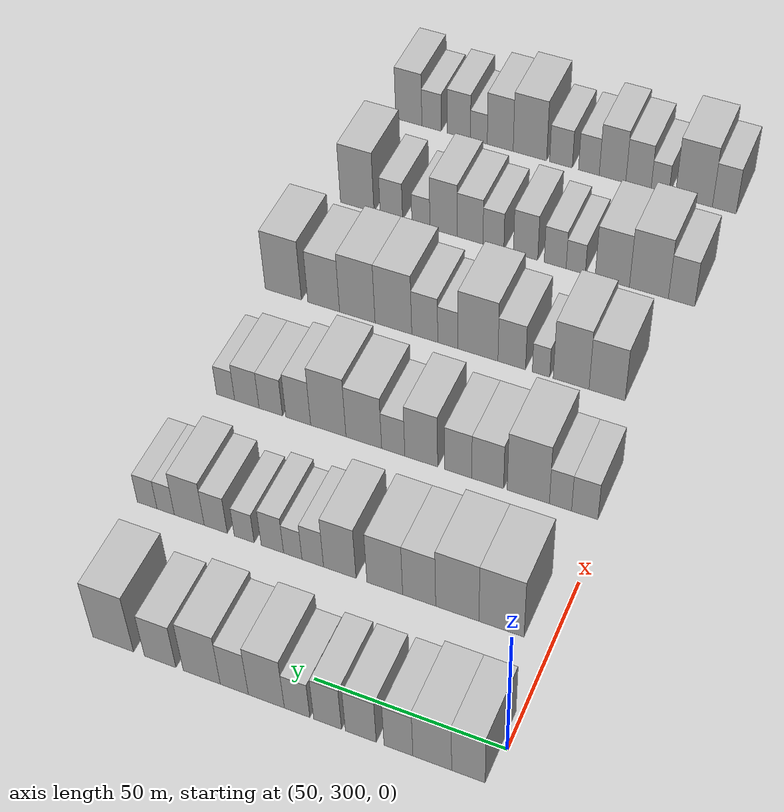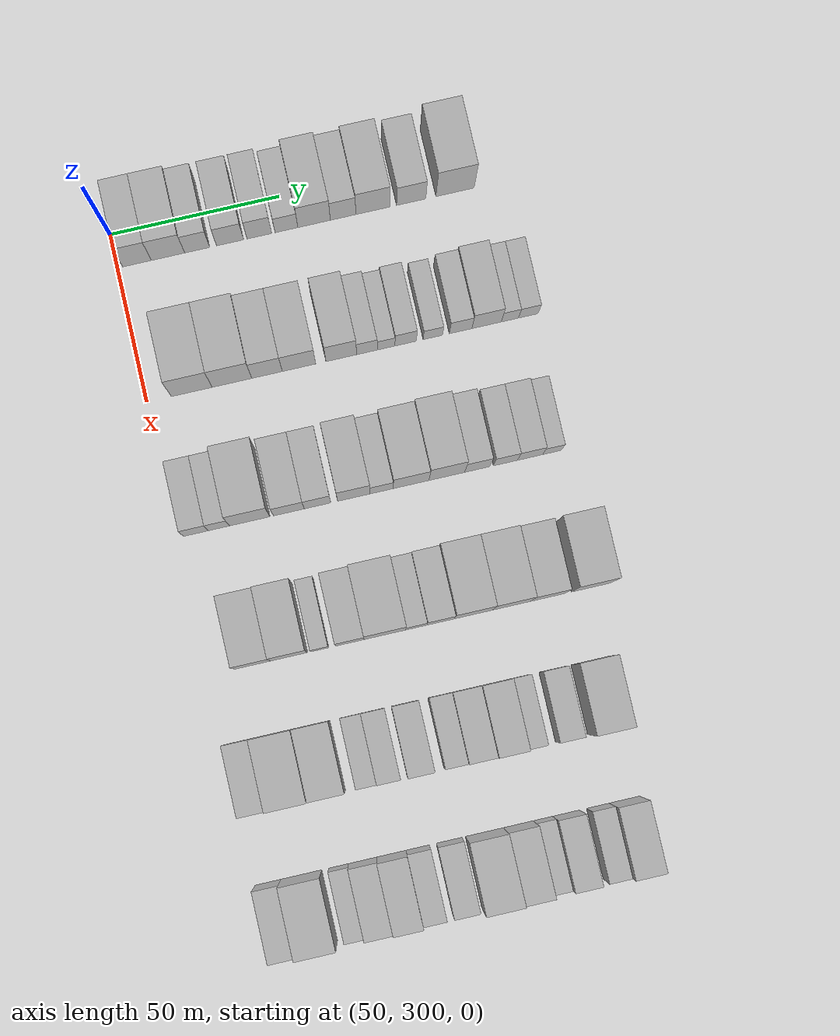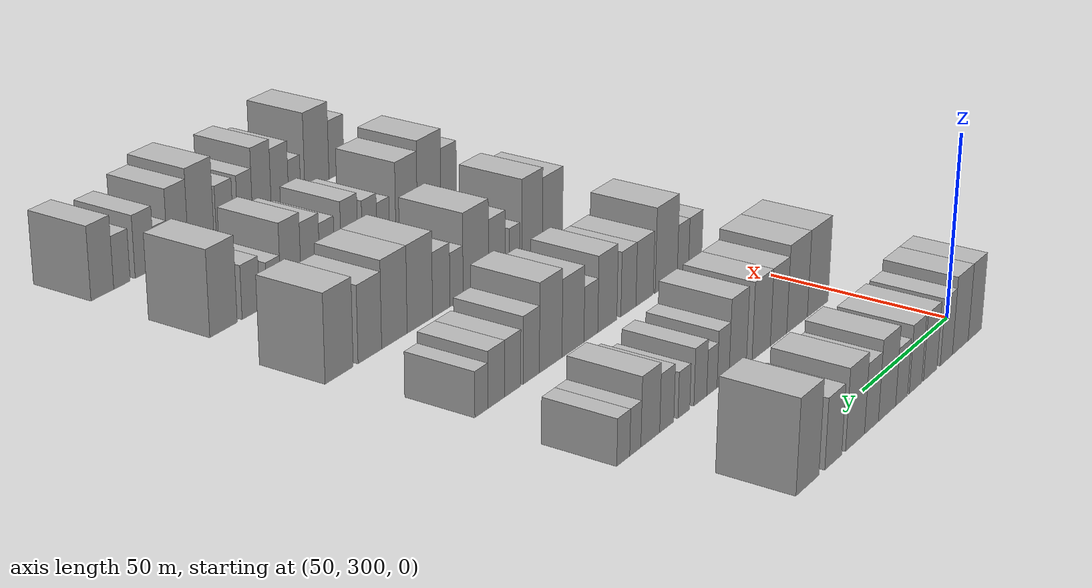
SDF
<sdf version="1.6">
 <world name="default">
  <model name="building_103">
   <static>1</static>
   <pose>50.0000 305.8253 0 0.000000 0.000000 0.000000</pose>
   <link name="link">
    <pose>0 0 10.50 0 0 0</pose>
    <collision name="collision"><geometry><box><size>20.0000 8.4326 21.0000</size></box></geometry></collision>
    <visual name="visual">
     <cast_shadows>0</cast_shadows>
     <geometry><box><size>20.0000 8.4326 21.0000</size></box></geometry>
     <material>
      <script>
       <uri>model://HANNAS_wall/materials/scripts</uri>
       <uri>model://HANNAS_wall/materials/textures</uri>
       <name>vrc/HANNAS_wall</name>
      </script>
     </material>
    </visual>
   </link>
  </model>
  <model name="building_104">
   <static>1</static>
   <pose>50.0000 314.9477 0 0.000000 0.000000 0.000000</pose>
   <link name="link">
    <pose>0 0 10.50 0 0 0</pose>
    <collision name="collision"><geometry><box><size>20.0000 9.8123 21.0000</size></box></geometry></collision>
    <visual name="visual">
     <cast_shadows>0</cast_shadows>
     <geometry><box><size>20.0000 9.8123 21.0000</size></box></geometry>
     <material>
      <script>
       <uri>model://HANNAS_wall/materials/scripts</uri>
       <uri>model://HANNAS_wall/materials/textures</uri>
       <name>vrc/HANNAS_wall</name>
      </script>
     </material>
    </visual>
   </link>
  </model>
  <model name="building_105">
   <static>1</static>
   <pose>50.0000 323.5456 0 0.000000 0.000000 0.000000</pose>
   <link name="link">
    <pose>0 0 9.00 0 0 0</pose>
    <collision name="collision"><geometry><box><size>20.0000 7.3835 18.0000</size></box></geometry></collision>
    <visual name="visual">
     <cast_shadows>0</cast_shadows>
     <geometry><box><size>20.0000 7.3835 18.0000</size></box></geometry>
     <material>
      <script>
       <uri>model://HANNAS_wall/materials/scripts</uri>
       <uri>model://HANNAS_wall/materials/textures</uri>
       <name>vrc/HANNAS_wall</name>
      </script>
     </material>
    </visual>
   </link>
  </model>
  <model name="building_106">
   <static>1</static>
   <pose>50.0000 333.2381 0 0.000000 0.000000 0.000000</pose>
   <link name="link">
    <pose>0 0 9.00 0 0 0</pose>
    <collision name="collision"><geometry><box><size>20.0000 8.0015 18.0000</size></box></geometry></collision>
    <visual name="visual">
     <cast_shadows>0</cast_shadows>
     <geometry><box><size>20.0000 8.0015 18.0000</size></box></geometry>
     <material>
      <script>
       <uri>model://HANNAS_wall/materials/scripts</uri>
       <uri>model://HANNAS_wall/materials/textures</uri>
       <name>vrc/HANNAS_wall</name>
      </script>
     </material>
    </visual>
   </link>
  </model>
  <model name="building_107">
   <static>1</static>
   <pose>50.0000 341.8808 0 0.000000 0.000000 0.000000</pose>
   <link name="link">
    <pose>0 0 9.00 0 0 0</pose>
    <collision name="collision"><geometry><box><size>20.0000 7.2839 18.0000</size></box></geometry></collision>
    <visual name="visual">
     <cast_shadows>0</cast_shadows>
     <geometry><box><size>20.0000 7.2839 18.0000</size></box></geometry>
     <material>
      <script>
       <uri>model://HANNAS_wall/materials/scripts</uri>
       <uri>model://HANNAS_wall/materials/textures</uri>
       <name>vrc/HANNAS_wall</name>
      </script>
     </material>
    </visual>
   </link>
  </model>
  <model name="building_108">
   <static>1</static>
   <pose>50.0000 349.8903 0 0.000000 0.000000 0.000000</pose>
   <link name="link">
    <pose>0 0 7.50 0 0 0</pose>
    <collision name="collision"><geometry><box><size>20.0000 6.7350 15.0000</size></box></geometry></collision>
    <visual name="visual">
     <cast_shadows>0</cast_shadows>
     <geometry><box><size>20.0000 6.7350 15.0000</size></box></geometry>
     <material>
      <script>
       <uri>model://HANNAS_wall/materials/scripts</uri>
       <uri>model://HANNAS_wall/materials/textures</uri>
       <name>vrc/HANNAS_wall</name>
      </script>
     </material>
    </visual>
   </link>
  </model>
  <model name="building_109">
   <static>1</static>
   <pose>50.0000 358.0537 0 0.000000 0.000000 0.000000</pose>
   <link name="link">
    <pose>0 0 10.50 0 0 0</pose>
    <collision name="collision"><geometry><box><size>20.0000 9.5920 21.0000</size></box></geometry></collision>
    <visual name="visual">
     <cast_shadows>0</cast_shadows>
     <geometry><box><size>20.0000 9.5920 21.0000</size></box></geometry>
     <material>
      <script>
       <uri>model://HANNAS_wall/materials/scripts</uri>
       <uri>model://HANNAS_wall/materials/textures</uri>
       <name>vrc/HANNAS_wall</name>
      </script>
     </material>
    </visual>
   </link>
  </model>
  <model name="building_110">
   <static>1</static>
   <pose>50.0000 366.6254 0 0.000000 0.000000 0.000000</pose>
   <link name="link">
    <pose>0 0 9.00 0 0 0</pose>
    <collision name="collision"><geometry><box><size>20.0000 7.5514 18.0000</size></box></geometry></collision>
    <visual name="visual">
     <cast_shadows>0</cast_shadows>
     <geometry><box><size>20.0000 7.5514 18.0000</size></box></geometry>
     <material>
      <script>
       <uri>model://HANNAS_wall/materials/scripts</uri>
       <uri>model://HANNAS_wall/materials/textures</uri>
       <name>vrc/HANNAS_wall</name>
      </script>
     </material>
    </visual>
   </link>
  </model>
  <model name="building_111">
   <static>1</static>
   <pose>50.0000 375.4307 0 0.000000 0.000000 0.000000</pose>
   <link name="link">
    <pose>0 0 10.50 0 0 0</pose>
    <collision name="collision"><geometry><box><size>20.0000 10.0591 21.0000</size></box></geometry></collision>
    <visual name="visual">
     <cast_shadows>0</cast_shadows>
     <geometry><box><size>20.0000 10.0591 21.0000</size></box></geometry>
     <material>
      <script>
       <uri>model://HANNAS_wall/materials/scripts</uri>
       <uri>model://HANNAS_wall/materials/textures</uri>
       <name>vrc/HANNAS_wall</name>
      </script>
     </material>
    </visual>
   </link>
  </model>
  <model name="building_112">
   <static>1</static>
   <pose>50.0000 386.7936 0 0.000000 0.000000 0.000000</pose>
   <link name="link">
    <pose>0 0 9.00 0 0 0</pose>
    <collision name="collision"><geometry><box><size>20.0000 8.6667 18.0000</size></box></geometry></collision>
    <visual name="visual">
     <cast_shadows>0</cast_shadows>
     <geometry><box><size>20.0000 8.6667 18.0000</size></box></geometry>
     <material>
      <script>
       <uri>model://HANNAS_wall/materials/scripts</uri>
       <uri>model://HANNAS_wall/materials/textures</uri>
       <name>vrc/HANNAS_wall</name>
      </script>
     </material>
    </visual>
   </link>
  </model>
  <model name="building_113">
   <static>1</static>
   <pose>50.0000 399.7933 0 0.000000 0.000000 0.000000</pose>
   <link name="link">
    <pose>0 0 12.00 0 0 0</pose>
    <collision name="collision"><geometry><box><size>20.0000 11.3327 24.0000</size></box></geometry></collision>
    <visual name="visual">
     <cast_shadows>0</cast_shadows>
     <geometry><box><size>20.0000 11.3327 24.0000</size></box></geometry>
     <material>
      <script>
       <uri>model://HANNAS_wall/materials/scripts</uri>
       <uri>model://HANNAS_wall/materials/textures</uri>
       <name>vrc/HANNAS_wall</name>
      </script>
     </material>
    </visual>
   </link>
  </model>
  <model name="building_226">
   <static>1</static>
   <pose>90.0000 313.1692 0 0.000000 0.000000 0.000000</pose>
   <link name="link">
    <pose>0 0 12.00 0 0 0</pose>
    <collision name="collision"><geometry><box><size>20.0000 11.9504 24.0000</size></box></geometry></collision>
    <visual name="visual">
     <cast_shadows>0</cast_shadows>
     <geometry><box><size>20.0000 11.9504 24.0000</size></box></geometry>
     <material>
      <script>
       <uri>model://HANNAS_wall/materials/scripts</uri>
       <uri>model://HANNAS_wall/materials/textures</uri>
       <name>vrc/HANNAS_wall</name>
      </script>
     </material>
    </visual>
   </link>
  </model>
  <model name="building_227">
   <static>1</static>
   <pose>90.0000 324.9490 0 0.000000 0.000000 0.000000</pose>
   <link name="link">
    <pose>0 0 12.00 0 0 0</pose>
    <collision name="collision"><geometry><box><size>20.0000 11.6093 24.0000</size></box></geometry></collision>
    <visual name="visual">
     <cast_shadows>0</cast_shadows>
     <geometry><box><size>20.0000 11.6093 24.0000</size></box></geometry>
     <material>
      <script>
       <uri>model://HANNAS_wall/materials/scripts</uri>
       <uri>model://HANNAS_wall/materials/textures</uri>
       <name>vrc/HANNAS_wall</name>
      </script>
     </material>
    </visual>
   </link>
  </model>
  <model name="building_228">
   <static>1</static>
   <pose>90.0000 335.2358 0 0.000000 0.000000 0.000000</pose>
   <link name="link">
    <pose>0 0 10.50 0 0 0</pose>
    <collision name="collision"><geometry><box><size>20.0000 8.9642 21.0000</size></box></geometry></collision>
    <visual name="visual">
     <cast_shadows>0</cast_shadows>
     <geometry><box><size>20.0000 8.9642 21.0000</size></box></geometry>
     <material>
      <script>
       <uri>model://HANNAS_wall/materials/scripts</uri>
       <uri>model://HANNAS_wall/materials/textures</uri>
       <name>vrc/HANNAS_wall</name>
      </script>
     </material>
    </visual>
   </link>
  </model>
  <model name="building_229">
   <static>1</static>
   <pose>90.0000 344.6121 0 0.000000 0.000000 0.000000</pose>
   <link name="link">
    <pose>0 0 10.50 0 0 0</pose>
    <collision name="collision"><geometry><box><size>20.0000 9.7885 21.0000</size></box></geometry></collision>
    <visual name="visual">
     <cast_shadows>0</cast_shadows>
     <geometry><box><size>20.0000 9.7885 21.0000</size></box></geometry>
     <material>
      <script>
       <uri>model://HANNAS_wall/materials/scripts</uri>
       <uri>model://HANNAS_wall/materials/textures</uri>
       <name>vrc/HANNAS_wall</name>
      </script>
     </material>
    </visual>
   </link>
  </model>
  <model name="building_230">
   <static>1</static>
   <pose>90.0000 357.0167 0 0.000000 0.000000 0.000000</pose>
   <link name="link">
    <pose>0 0 10.50 0 0 0</pose>
    <collision name="collision"><geometry><box><size>20.0000 9.0206 21.0000</size></box></geometry></collision>
    <visual name="visual">
     <cast_shadows>0</cast_shadows>
     <geometry><box><size>20.0000 9.0206 21.0000</size></box></geometry>
     <material>
      <script>
       <uri>model://HANNAS_wall/materials/scripts</uri>
       <uri>model://HANNAS_wall/materials/textures</uri>
       <name>vrc/HANNAS_wall</name>
      </script>
     </material>
    </visual>
   </link>
  </model>
  <model name="building_231">
   <static>1</static>
   <pose>90.0000 364.5500 0 0.000000 0.000000 0.000000</pose>
   <link name="link">
    <pose>0 0 7.50 0 0 0</pose>
    <collision name="collision"><geometry><box><size>20.0000 6.0461 15.0000</size></box></geometry></collision>
    <visual name="visual">
     <cast_shadows>0</cast_shadows>
     <geometry><box><size>20.0000 6.0461 15.0000</size></box></geometry>
     <material>
      <script>
       <uri>model://HANNAS_wall/materials/scripts</uri>
       <uri>model://HANNAS_wall/materials/textures</uri>
       <name>vrc/HANNAS_wall</name>
      </script>
     </material>
    </visual>
   </link>
  </model>
  <model name="building_232">
   <static>1</static>
   <pose>90.0000 370.1672 0 0.000000 0.000000 0.000000</pose>
   <link name="link">
    <pose>0 0 6.00 0 0 0</pose>
    <collision name="collision"><geometry><box><size>20.0000 5.1883 12.0000</size></box></geometry></collision>
    <visual name="visual">
     <cast_shadows>0</cast_shadows>
     <geometry><box><size>20.0000 5.1883 12.0000</size></box></geometry>
     <material>
      <script>
       <uri>model://HANNAS_wall/materials/scripts</uri>
       <uri>model://HANNAS_wall/materials/textures</uri>
       <name>vrc/HANNAS_wall</name>
      </script>
     </material>
    </visual>
   </link>
  </model>
  <model name="building_233">
   <static>1</static>
   <pose>90.0000 375.9219 0 0.000000 0.000000 0.000000</pose>
   <link name="link">
    <pose>0 0 7.50 0 0 0</pose>
    <collision name="collision"><geometry><box><size>20.0000 6.3212 15.0000</size></box></geometry></collision>
    <visual name="visual">
     <cast_shadows>0</cast_shadows>
     <geometry><box><size>20.0000 6.3212 15.0000</size></box></geometry>
     <material>
      <script>
       <uri>model://HANNAS_wall/materials/scripts</uri>
       <uri>model://HANNAS_wall/materials/textures</uri>
       <name>vrc/HANNAS_wall</name>
      </script>
     </material>
    </visual>
   </link>
  </model>
  <model name="building_234">
   <static>1</static>
   <pose>90.0000 383.9316 0 0.000000 0.000000 0.000000</pose>
   <link name="link">
    <pose>0 0 6.00 0 0 0</pose>
    <collision name="collision"><geometry><box><size>20.0000 5.6982 12.0000</size></box></geometry></collision>
    <visual name="visual">
     <cast_shadows>0</cast_shadows>
     <geometry><box><size>20.0000 5.6982 12.0000</size></box></geometry>
     <material>
      <script>
       <uri>model://HANNAS_wall/materials/scripts</uri>
       <uri>model://HANNAS_wall/materials/textures</uri>
       <name>vrc/HANNAS_wall</name>
      </script>
     </material>
    </visual>
   </link>
  </model>
  <model name="building_235">
   <static>1</static>
   <pose>90.0000 392.1097 0 0.000000 0.000000 0.000000</pose>
   <link name="link">
    <pose>0 0 7.50 0 0 0</pose>
    <collision name="collision"><geometry><box><size>20.0000 6.6580 15.0000</size></box></geometry></collision>
    <visual name="visual">
     <cast_shadows>0</cast_shadows>
     <geometry><box><size>20.0000 6.6580 15.0000</size></box></geometry>
     <material>
      <script>
       <uri>model://HANNAS_wall/materials/scripts</uri>
       <uri>model://HANNAS_wall/materials/textures</uri>
       <name>vrc/HANNAS_wall</name>
      </script>
     </material>
    </visual>
   </link>
  </model>
  <model name="building_236">
   <static>1</static>
   <pose>90.0000 399.7861 0 0.000000 0.000000 0.000000</pose>
   <link name="link">
    <pose>0 0 9.00 0 0 0</pose>
    <collision name="collision"><geometry><box><size>20.0000 8.6948 18.0000</size></box></geometry></collision>
    <visual name="visual">
     <cast_shadows>0</cast_shadows>
     <geometry><box><size>20.0000 8.6948 18.0000</size></box></geometry>
     <material>
      <script>
       <uri>model://HANNAS_wall/materials/scripts</uri>
       <uri>model://HANNAS_wall/materials/textures</uri>
       <name>vrc/HANNAS_wall</name>
      </script>
     </material>
    </visual>
   </link>
  </model>
  <model name="building_237">
   <static>1</static>
   <pose>90.0000 406.6578 0 0.000000 0.000000 0.000000</pose>
   <link name="link">
    <pose>0 0 6.00 0 0 0</pose>
    <collision name="collision"><geometry><box><size>20.0000 5.0487 12.0000</size></box></geometry></collision>
    <visual name="visual">
     <cast_shadows>0</cast_shadows>
     <geometry><box><size>20.0000 5.0487 12.0000</size></box></geometry>
     <material>
      <script>
       <uri>model://HANNAS_wall/materials/scripts</uri>
       <uri>model://HANNAS_wall/materials/textures</uri>
       <name>vrc/HANNAS_wall</name>
      </script>
     </material>
    </visual>
   </link>
  </model>
  <model name="building_238">
   <static>1</static>
   <pose>90.0000 412.0759 0 0.000000 0.000000 0.000000</pose>
   <link name="link">
    <pose>0 0 6.00 0 0 0</pose>
    <collision name="collision"><geometry><box><size>20.0000 5.7875 12.0000</size></box></geometry></collision>
    <visual name="visual">
     <cast_shadows>0</cast_shadows>
     <geometry><box><size>20.0000 5.7875 12.0000</size></box></geometry>
     <material>
      <script>
       <uri>model://HANNAS_wall/materials/scripts</uri>
       <uri>model://HANNAS_wall/materials/textures</uri>
       <name>vrc/HANNAS_wall</name>
      </script>
     </material>
    </visual>
   </link>
  </model>
  <model name="building_365">
   <static>1</static>
   <pose>130.0000 305.6212 0 0.000000 0.000000 0.000000</pose>
   <link name="link">
    <pose>0 0 7.50 0 0 0</pose>
    <collision name="collision"><geometry><box><size>20.0000 7.2602 15.0000</size></box></geometry></collision>
    <visual name="visual">
     <cast_shadows>0</cast_shadows>
     <geometry><box><size>20.0000 7.2602 15.0000</size></box></geometry>
     <material>
      <script>
       <uri>model://HANNAS_wall/materials/scripts</uri>
       <uri>model://HANNAS_wall/materials/textures</uri>
       <name>vrc/HANNAS_wall</name>
      </script>
     </material>
    </visual>
   </link>
  </model>
  <model name="building_366">
   <static>1</static>
   <pose>130.0000 312.3265 0 0.000000 0.000000 0.000000</pose>
   <link name="link">
    <pose>0 0 7.50 0 0 0</pose>
    <collision name="collision"><geometry><box><size>20.0000 6.1504 15.0000</size></box></geometry></collision>
    <visual name="visual">
     <cast_shadows>0</cast_shadows>
     <geometry><box><size>20.0000 6.1504 15.0000</size></box></geometry>
     <material>
      <script>
       <uri>model://HANNAS_wall/materials/scripts</uri>
       <uri>model://HANNAS_wall/materials/textures</uri>
       <name>vrc/HANNAS_wall</name>
      </script>
     </material>
    </visual>
   </link>
  </model>
  <model name="building_367">
   <static>1</static>
   <pose>130.0000 321.2899 0 0.000000 0.000000 0.000000</pose>
   <link name="link">
    <pose>0 0 12.00 0 0 0</pose>
    <collision name="collision"><geometry><box><size>20.0000 11.7765 24.0000</size></box></geometry></collision>
    <visual name="visual">
     <cast_shadows>0</cast_shadows>
     <geometry><box><size>20.0000 11.7765 24.0000</size></box></geometry>
     <material>
      <script>
       <uri>model://HANNAS_wall/materials/scripts</uri>
       <uri>model://HANNAS_wall/materials/textures</uri>
       <name>vrc/HANNAS_wall</name>
      </script>
     </material>
    </visual>
   </link>
  </model>
  <model name="building_368">
   <static>1</static>
   <pose>130.0000 332.6677 0 0.000000 0.000000 0.000000</pose>
   <link name="link">
    <pose>0 0 9.00 0 0 0</pose>
    <collision name="collision"><geometry><box><size>20.0000 8.9789 18.0000</size></box></geometry></collision>
    <visual name="visual">
     <cast_shadows>0</cast_shadows>
     <geometry><box><size>20.0000 8.9789 18.0000</size></box></geometry>
     <material>
      <script>
       <uri>model://HANNAS_wall/materials/scripts</uri>
       <uri>model://HANNAS_wall/materials/textures</uri>
       <name>vrc/HANNAS_wall</name>
      </script>
     </material>
    </visual>
   </link>
  </model>
  <model name="building_369">
   <static>1</static>
   <pose>130.0000 341.0143 0 0.000000 0.000000 0.000000</pose>
   <link name="link">
    <pose>0 0 9.00 0 0 0</pose>
    <collision name="collision"><geometry><box><size>20.0000 7.7143 18.0000</size></box></geometry></collision>
    <visual name="visual">
     <cast_shadows>0</cast_shadows>
     <geometry><box><size>20.0000 7.7143 18.0000</size></box></geometry>
     <material>
      <script>
       <uri>model://HANNAS_wall/materials/scripts</uri>
       <uri>model://HANNAS_wall/materials/textures</uri>
       <name>vrc/HANNAS_wall</name>
      </script>
     </material>
    </visual>
   </link>
  </model>
  <model name="building_370">
   <static>1</static>
   <pose>130.0000 351.5973 0 0.000000 0.000000 0.000000</pose>
   <link name="link">
    <pose>0 0 10.50 0 0 0</pose>
    <collision name="collision"><geometry><box><size>20.0000 9.4517 21.0000</size></box></geometry></collision>
    <visual name="visual">
     <cast_shadows>0</cast_shadows>
     <geometry><box><size>20.0000 9.4517 21.0000</size></box></geometry>
     <material>
      <script>
       <uri>model://HANNAS_wall/materials/scripts</uri>
       <uri>model://HANNAS_wall/materials/textures</uri>
       <name>vrc/HANNAS_wall</name>
      </script>
     </material>
    </visual>
   </link>
  </model>
  <model name="building_371">
   <static>1</static>
   <pose>130.0000 359.6868 0 0.000000 0.000000 0.000000</pose>
   <link name="link">
    <pose>0 0 7.50 0 0 0</pose>
    <collision name="collision"><geometry><box><size>20.0000 6.7272 15.0000</size></box></geometry></collision>
    <visual name="visual">
     <cast_shadows>0</cast_shadows>
     <geometry><box><size>20.0000 6.7272 15.0000</size></box></geometry>
     <material>
      <script>
       <uri>model://HANNAS_wall/materials/scripts</uri>
       <uri>model://HANNAS_wall/materials/textures</uri>
       <name>vrc/HANNAS_wall</name>
      </script>
     </material>
    </visual>
   </link>
  </model>
  <model name="building_372">
   <static>1</static>
   <pose>130.0000 368.2761 0 0.000000 0.000000 0.000000</pose>
   <link name="link">
    <pose>0 0 10.50 0 0 0</pose>
    <collision name="collision"><geometry><box><size>20.0000 10.4515 21.0000</size></box></geometry></collision>
    <visual name="visual">
     <cast_shadows>0</cast_shadows>
     <geometry><box><size>20.0000 10.4515 21.0000</size></box></geometry>
     <material>
      <script>
       <uri>model://HANNAS_wall/materials/scripts</uri>
       <uri>model://HANNAS_wall/materials/textures</uri>
       <name>vrc/HANNAS_wall</name>
      </script>
     </material>
    </visual>
   </link>
  </model>
  <model name="building_373">
   <static>1</static>
   <pose>130.0000 378.7266 0 0.000000 0.000000 0.000000</pose>
   <link name="link">
    <pose>0 0 12.00 0 0 0</pose>
    <collision name="collision"><geometry><box><size>20.0000 10.4494 24.0000</size></box></geometry></collision>
    <visual name="visual">
     <cast_shadows>0</cast_shadows>
     <geometry><box><size>20.0000 10.4494 24.0000</size></box></geometry>
     <material>
      <script>
       <uri>model://HANNAS_wall/materials/scripts</uri>
       <uri>model://HANNAS_wall/materials/textures</uri>
       <name>vrc/HANNAS_wall</name>
      </script>
     </material>
    </visual>
   </link>
  </model>
  <model name="building_374">
   <static>1</static>
   <pose>130.0000 387.6523 0 0.000000 0.000000 0.000000</pose>
   <link name="link">
    <pose>0 0 9.00 0 0 0</pose>
    <collision name="collision"><geometry><box><size>20.0000 7.4019 18.0000</size></box></geometry></collision>
    <visual name="visual">
     <cast_shadows>0</cast_shadows>
     <geometry><box><size>20.0000 7.4019 18.0000</size></box></geometry>
     <material>
      <script>
       <uri>model://HANNAS_wall/materials/scripts</uri>
       <uri>model://HANNAS_wall/materials/textures</uri>
       <name>vrc/HANNAS_wall</name>
      </script>
     </material>
    </visual>
   </link>
  </model>
  <model name="building_375">
   <static>1</static>
   <pose>130.0000 395.8868 0 0.000000 0.000000 0.000000</pose>
   <link name="link">
    <pose>0 0 7.50 0 0 0</pose>
    <collision name="collision"><geometry><box><size>20.0000 7.0671 15.0000</size></box></geometry></collision>
    <visual name="visual">
     <cast_shadows>0</cast_shadows>
     <geometry><box><size>20.0000 7.0671 15.0000</size></box></geometry>
     <material>
      <script>
       <uri>model://HANNAS_wall/materials/scripts</uri>
       <uri>model://HANNAS_wall/materials/textures</uri>
       <name>vrc/HANNAS_wall</name>
      </script>
     </material>
    </visual>
   </link>
  </model>
  <model name="building_376">
   <static>1</static>
   <pose>130.0000 403.1202 0 0.000000 0.000000 0.000000</pose>
   <link name="link">
    <pose>0 0 7.50 0 0 0</pose>
    <collision name="collision"><geometry><box><size>20.0000 7.3997 15.0000</size></box></geometry></collision>
    <visual name="visual">
     <cast_shadows>0</cast_shadows>
     <geometry><box><size>20.0000 7.3997 15.0000</size></box></geometry>
     <material>
      <script>
       <uri>model://HANNAS_wall/materials/scripts</uri>
       <uri>model://HANNAS_wall/materials/textures</uri>
       <name>vrc/HANNAS_wall</name>
      </script>
     </material>
    </visual>
   </link>
  </model>
  <model name="building_377">
   <static>1</static>
   <pose>130.0000 409.5584 0 0.000000 0.000000 0.000000</pose>
   <link name="link">
    <pose>0 0 6.00 0 0 0</pose>
    <collision name="collision"><geometry><box><size>20.0000 5.4769 12.0000</size></box></geometry></collision>
    <visual name="visual">
     <cast_shadows>0</cast_shadows>
     <geometry><box><size>20.0000 5.4769 12.0000</size></box></geometry>
     <material>
      <script>
       <uri>model://HANNAS_wall/materials/scripts</uri>
       <uri>model://HANNAS_wall/materials/textures</uri>
       <name>vrc/HANNAS_wall</name>
      </script>
     </material>
    </visual>
   </link>
  </model>
  <model name="building_503">
   <static>1</static>
   <pose>170.0000 313.4407 0 0.000000 0.000000 0.000000</pose>
   <link name="link">
    <pose>0 0 10.50 0 0 0</pose>
    <collision name="collision"><geometry><box><size>20.0000 10.4344 21.0000</size></box></geometry></collision>
    <visual name="visual">
     <cast_shadows>0</cast_shadows>
     <geometry><box><size>20.0000 10.4344 21.0000</size></box></geometry>
     <material>
      <script>
       <uri>model://HANNAS_wall/materials/scripts</uri>
       <uri>model://HANNAS_wall/materials/textures</uri>
       <name>vrc/HANNAS_wall</name>
      </script>
     </material>
    </visual>
   </link>
  </model>
  <model name="building_504">
   <static>1</static>
   <pose>170.0000 323.8854 0 0.000000 0.000000 0.000000</pose>
   <link name="link">
    <pose>0 0 12.00 0 0 0</pose>
    <collision name="collision"><geometry><box><size>20.0000 10.4550 24.0000</size></box></geometry></collision>
    <visual name="visual">
     <cast_shadows>0</cast_shadows>
     <geometry><box><size>20.0000 10.4550 24.0000</size></box></geometry>
     <material>
      <script>
       <uri>model://HANNAS_wall/materials/scripts</uri>
       <uri>model://HANNAS_wall/materials/textures</uri>
       <name>vrc/HANNAS_wall</name>
      </script>
     </material>
    </visual>
   </link>
  </model>
  <model name="building_505">
   <static>1</static>
   <pose>170.0000 332.6791 0 0.000000 0.000000 0.000000</pose>
   <link name="link">
    <pose>0 0 6.00 0 0 0</pose>
    <collision name="collision"><geometry><box><size>20.0000 5.1325 12.0000</size></box></geometry></collision>
    <visual name="visual">
     <cast_shadows>0</cast_shadows>
     <geometry><box><size>20.0000 5.1325 12.0000</size></box></geometry>
     <material>
      <script>
       <uri>model://HANNAS_wall/materials/scripts</uri>
       <uri>model://HANNAS_wall/materials/textures</uri>
       <name>vrc/HANNAS_wall</name>
      </script>
     </material>
    </visual>
   </link>
  </model>
  <model name="building_506">
   <static>1</static>
   <pose>170.0000 341.3443 0 0.000000 0.000000 0.000000</pose>
   <link name="link">
    <pose>0 0 9.00 0 0 0</pose>
    <collision name="collision"><geometry><box><size>20.0000 8.1978 18.0000</size></box></geometry></collision>
    <visual name="visual">
     <cast_shadows>0</cast_shadows>
     <geometry><box><size>20.0000 8.1978 18.0000</size></box></geometry>
     <material>
      <script>
       <uri>model://HANNAS_wall/materials/scripts</uri>
       <uri>model://HANNAS_wall/materials/textures</uri>
       <name>vrc/HANNAS_wall</name>
      </script>
     </material>
    </visual>
   </link>
  </model>
  <model name="building_507">
   <static>1</static>
   <pose>170.0000 351.4229 0 0.000000 0.000000 0.000000</pose>
   <link name="link">
    <pose>0 0 12.00 0 0 0</pose>
    <collision name="collision"><geometry><box><size>20.0000 11.9594 24.0000</size></box></geometry></collision>
    <visual name="visual">
     <cast_shadows>0</cast_shadows>
     <geometry><box><size>20.0000 11.9594 24.0000</size></box></geometry>
     <material>
      <script>
       <uri>model://HANNAS_wall/materials/scripts</uri>
       <uri>model://HANNAS_wall/materials/textures</uri>
       <name>vrc/HANNAS_wall</name>
      </script>
     </material>
    </visual>
   </link>
  </model>
  <model name="building_508">
   <static>1</static>
   <pose>170.0000 360.4555 0 0.000000 0.000000 0.000000</pose>
   <link name="link">
    <pose>0 0 7.50 0 0 0</pose>
    <collision name="collision"><geometry><box><size>20.0000 6.1057 15.0000</size></box></geometry></collision>
    <visual name="visual">
     <cast_shadows>0</cast_shadows>
     <geometry><box><size>20.0000 6.1057 15.0000</size></box></geometry>
     <material>
      <script>
       <uri>model://HANNAS_wall/materials/scripts</uri>
       <uri>model://HANNAS_wall/materials/textures</uri>
       <name>vrc/HANNAS_wall</name>
      </script>
     </material>
    </visual>
   </link>
  </model>
  <model name="building_509">
   <static>1</static>
   <pose>170.0000 367.4638 0 0.000000 0.000000 0.000000</pose>
   <link name="link">
    <pose>0 0 9.00 0 0 0</pose>
    <collision name="collision"><geometry><box><size>20.0000 7.9109 18.0000</size></box></geometry></collision>
    <visual name="visual">
     <cast_shadows>0</cast_shadows>
     <geometry><box><size>20.0000 7.9109 18.0000</size></box></geometry>
     <material>
      <script>
       <uri>model://HANNAS_wall/materials/scripts</uri>
       <uri>model://HANNAS_wall/materials/textures</uri>
       <name>vrc/HANNAS_wall</name>
      </script>
     </material>
    </visual>
   </link>
  </model>
  <model name="building_510">
   <static>1</static>
   <pose>170.0000 377.0533 0 0.000000 0.000000 0.000000</pose>
   <link name="link">
    <pose>0 0 12.00 0 0 0</pose>
    <collision name="collision"><geometry><box><size>20.0000 11.2682 24.0000</size></box></geometry></collision>
    <visual name="visual">
     <cast_shadows>0</cast_shadows>
     <geometry><box><size>20.0000 11.2682 24.0000</size></box></geometry>
     <material>
      <script>
       <uri>model://HANNAS_wall/materials/scripts</uri>
       <uri>model://HANNAS_wall/materials/textures</uri>
       <name>vrc/HANNAS_wall</name>
      </script>
     </material>
    </visual>
   </link>
  </model>
  <model name="building_511">
   <static>1</static>
   <pose>170.0000 388.2017 0 0.000000 0.000000 0.000000</pose>
   <link name="link">
    <pose>0 0 12.00 0 0 0</pose>
    <collision name="collision"><geometry><box><size>20.0000 11.0287 24.0000</size></box></geometry></collision>
    <visual name="visual">
     <cast_shadows>0</cast_shadows>
     <geometry><box><size>20.0000 11.0287 24.0000</size></box></geometry>
     <material>
      <script>
       <uri>model://HANNAS_wall/materials/scripts</uri>
       <uri>model://HANNAS_wall/materials/textures</uri>
       <name>vrc/HANNAS_wall</name>
      </script>
     </material>
    </visual>
   </link>
  </model>
  <model name="building_512">
   <static>1</static>
   <pose>170.0000 398.6866 0 0.000000 0.000000 0.000000</pose>
   <link name="link">
    <pose>0 0 10.50 0 0 0</pose>
    <collision name="collision"><geometry><box><size>20.0000 9.9411 21.0000</size></box></geometry></collision>
    <visual name="visual">
     <cast_shadows>0</cast_shadows>
     <geometry><box><size>20.0000 9.9411 21.0000</size></box></geometry>
     <material>
      <script>
       <uri>model://HANNAS_wall/materials/scripts</uri>
       <uri>model://HANNAS_wall/materials/textures</uri>
       <name>vrc/HANNAS_wall</name>
      </script>
     </material>
    </visual>
   </link>
  </model>
  <model name="building_513">
   <static>1</static>
   <pose>170.0000 411.3875 0 0.000000 0.000000 0.000000</pose>
   <link name="link">
    <pose>0 0 12.00 0 0 0</pose>
    <collision name="collision"><geometry><box><size>20.0000 11.4607 24.0000</size></box></geometry></collision>
    <visual name="visual">
     <cast_shadows>0</cast_shadows>
     <geometry><box><size>20.0000 11.4607 24.0000</size></box></geometry>
     <material>
      <script>
       <uri>model://HANNAS_wall/materials/scripts</uri>
       <uri>model://HANNAS_wall/materials/textures</uri>
       <name>vrc/HANNAS_wall</name>
      </script>
     </material>
    </visual>
   </link>
  </model>
  <model name="building_629">
   <static>1</static>
   <pose>210.0000 304.8789 0 0.000000 0.000000 0.000000</pose>
   <link name="link">
    <pose>0 0 9.00 0 0 0</pose>
    <collision name="collision"><geometry><box><size>20.0000 7.8795 18.0000</size></box></geometry></collision>
    <visual name="visual">
     <cast_shadows>0</cast_shadows>
     <geometry><box><size>20.0000 7.8795 18.0000</size></box></geometry>
     <material>
      <script>
       <uri>model://HANNAS_wall/materials/scripts</uri>
       <uri>model://HANNAS_wall/materials/textures</uri>
       <name>vrc/HANNAS_wall</name>
      </script>
     </material>
    </visual>
   </link>
  </model>
  <model name="building_630">
   <static>1</static>
   <pose>210.0000 314.6919 0 0.000000 0.000000 0.000000</pose>
   <link name="link">
    <pose>0 0 12.00 0 0 0</pose>
    <collision name="collision"><geometry><box><size>20.0000 11.7464 24.0000</size></box></geometry></collision>
    <visual name="visual">
     <cast_shadows>0</cast_shadows>
     <geometry><box><size>20.0000 11.7464 24.0000</size></box></geometry>
     <material>
      <script>
       <uri>model://HANNAS_wall/materials/scripts</uri>
       <uri>model://HANNAS_wall/materials/textures</uri>
       <name>vrc/HANNAS_wall</name>
      </script>
     </material>
    </visual>
   </link>
  </model>
  <model name="building_631">
   <static>1</static>
   <pose>210.0000 325.7686 0 0.000000 0.000000 0.000000</pose>
   <link name="link">
    <pose>0 0 10.50 0 0 0</pose>
    <collision name="collision"><geometry><box><size>20.0000 10.4069 21.0000</size></box></geometry></collision>
    <visual name="visual">
     <cast_shadows>0</cast_shadows>
     <geometry><box><size>20.0000 10.4069 21.0000</size></box></geometry>
     <material>
      <script>
       <uri>model://HANNAS_wall/materials/scripts</uri>
       <uri>model://HANNAS_wall/materials/textures</uri>
       <name>vrc/HANNAS_wall</name>
      </script>
     </material>
    </visual>
   </link>
  </model>
  <model name="building_632">
   <static>1</static>
   <pose>210.0000 336.9266 0 0.000000 0.000000 0.000000</pose>
   <link name="link">
    <pose>0 0 6.00 0 0 0</pose>
    <collision name="collision"><geometry><box><size>20.0000 5.9090 12.0000</size></box></geometry></collision>
    <visual name="visual">
     <cast_shadows>0</cast_shadows>
     <geometry><box><size>20.0000 5.9090 12.0000</size></box></geometry>
     <material>
      <script>
       <uri>model://HANNAS_wall/materials/scripts</uri>
       <uri>model://HANNAS_wall/materials/textures</uri>
       <name>vrc/HANNAS_wall</name>
      </script>
     </material>
    </visual>
   </link>
  </model>
  <model name="building_633">
   <static>1</static>
   <pose>210.0000 343.2720 0 0.000000 0.000000 0.000000</pose>
   <link name="link">
    <pose>0 0 7.50 0 0 0</pose>
    <collision name="collision"><geometry><box><size>20.0000 6.7819 15.0000</size></box></geometry></collision>
    <visual name="visual">
     <cast_shadows>0</cast_shadows>
     <geometry><box><size>20.0000 6.7819 15.0000</size></box></geometry>
     <material>
      <script>
       <uri>model://HANNAS_wall/materials/scripts</uri>
       <uri>model://HANNAS_wall/materials/textures</uri>
       <name>vrc/HANNAS_wall</name>
      </script>
     </material>
    </visual>
   </link>
  </model>
  <model name="building_634">
   <static>1</static>
   <pose>210.0000 352.4555 0 0.000000 0.000000 0.000000</pose>
   <link name="link">
    <pose>0 0 9.00 0 0 0</pose>
    <collision name="collision"><geometry><box><size>20.0000 7.5850 18.0000</size></box></geometry></collision>
    <visual name="visual">
     <cast_shadows>0</cast_shadows>
     <geometry><box><size>20.0000 7.5850 18.0000</size></box></geometry>
     <material>
      <script>
       <uri>model://HANNAS_wall/materials/scripts</uri>
       <uri>model://HANNAS_wall/materials/textures</uri>
       <name>vrc/HANNAS_wall</name>
      </script>
     </material>
    </visual>
   </link>
  </model>
  <model name="building_635">
   <static>1</static>
   <pose>210.0000 362.5289 0 0.000000 0.000000 0.000000</pose>
   <link name="link">
    <pose>0 0 7.50 0 0 0</pose>
    <collision name="collision"><geometry><box><size>20.0000 6.5618 15.0000</size></box></geometry></collision>
    <visual name="visual">
     <cast_shadows>0</cast_shadows>
     <geometry><box><size>20.0000 6.5618 15.0000</size></box></geometry>
     <material>
      <script>
       <uri>model://HANNAS_wall/materials/scripts</uri>
       <uri>model://HANNAS_wall/materials/textures</uri>
       <name>vrc/HANNAS_wall</name>
      </script>
     </material>
    </visual>
   </link>
  </model>
  <model name="building_636">
   <static>1</static>
   <pose>210.0000 369.8810 0 0.000000 0.000000 0.000000</pose>
   <link name="link">
    <pose>0 0 9.00 0 0 0</pose>
    <collision name="collision"><geometry><box><size>20.0000 8.1425 18.0000</size></box></geometry></collision>
    <visual name="visual">
     <cast_shadows>0</cast_shadows>
     <geometry><box><size>20.0000 8.1425 18.0000</size></box></geometry>
     <material>
      <script>
       <uri>model://HANNAS_wall/materials/scripts</uri>
       <uri>model://HANNAS_wall/materials/textures</uri>
       <name>vrc/HANNAS_wall</name>
      </script>
     </material>
    </visual>
   </link>
  </model>
  <model name="building_637">
   <static>1</static>
   <pose>210.0000 378.3112 0 0.000000 0.000000 0.000000</pose>
   <link name="link">
    <pose>0 0 10.50 0 0 0</pose>
    <collision name="collision"><geometry><box><size>20.0000 8.7178 21.0000</size></box></geometry></collision>
    <visual name="visual">
     <cast_shadows>0</cast_shadows>
     <geometry><box><size>20.0000 8.7178 21.0000</size></box></geometry>
     <material>
      <script>
       <uri>model://HANNAS_wall/materials/scripts</uri>
       <uri>model://HANNAS_wall/materials/textures</uri>
       <name>vrc/HANNAS_wall</name>
      </script>
     </material>
    </visual>
   </link>
  </model>
  <model name="building_638">
   <static>1</static>
   <pose>210.0000 385.5730 0 0.000000 0.000000 0.000000</pose>
   <link name="link">
    <pose>0 0 6.00 0 0 0</pose>
    <collision name="collision"><geometry><box><size>20.0000 5.8057 12.0000</size></box></geometry></collision>
    <visual name="visual">
     <cast_shadows>0</cast_shadows>
     <geometry><box><size>20.0000 5.8057 12.0000</size></box></geometry>
     <material>
      <script>
       <uri>model://HANNAS_wall/materials/scripts</uri>
       <uri>model://HANNAS_wall/materials/textures</uri>
       <name>vrc/HANNAS_wall</name>
      </script>
     </material>
    </visual>
   </link>
  </model>
  <model name="building_639">
   <static>1</static>
   <pose>210.0000 395.1149 0 0.000000 0.000000 0.000000</pose>
   <link name="link">
    <pose>0 0 7.50 0 0 0</pose>
    <collision name="collision"><geometry><box><size>20.0000 7.2782 15.0000</size></box></geometry></collision>
    <visual name="visual">
     <cast_shadows>0</cast_shadows>
     <geometry><box><size>20.0000 7.2782 15.0000</size></box></geometry>
     <material>
      <script>
       <uri>model://HANNAS_wall/materials/scripts</uri>
       <uri>model://HANNAS_wall/materials/textures</uri>
       <name>vrc/HANNAS_wall</name>
      </script>
     </material>
    </visual>
   </link>
  </model>
  <model name="building_640">
   <static>1</static>
   <pose>210.0000 406.2231 0 0.000000 0.000000 0.000000</pose>
   <link name="link">
    <pose>0 0 12.00 0 0 0</pose>
    <collision name="collision"><geometry><box><size>20.0000 10.9381 24.0000</size></box></geometry></collision>
    <visual name="visual">
     <cast_shadows>0</cast_shadows>
     <geometry><box><size>20.0000 10.9381 24.0000</size></box></geometry>
     <material>
      <script>
       <uri>model://HANNAS_wall/materials/scripts</uri>
       <uri>model://HANNAS_wall/materials/textures</uri>
       <name>vrc/HANNAS_wall</name>
      </script>
     </material>
    </visual>
   </link>
  </model>
  <model name="building_763">
   <static>1</static>
   <pose>250.0000 304.2972 0 0.000000 0.000000 0.000000</pose>
   <link name="link">
    <pose>0 0 9.00 0 0 0</pose>
    <collision name="collision"><geometry><box><size>20.0000 7.3988 18.0000</size></box></geometry></collision>
    <visual name="visual">
     <cast_shadows>0</cast_shadows>
     <geometry><box><size>20.0000 7.3988 18.0000</size></box></geometry>
     <material>
      <script>
       <uri>model://HANNAS_wall/materials/scripts</uri>
       <uri>model://HANNAS_wall/materials/textures</uri>
       <name>vrc/HANNAS_wall</name>
      </script>
     </material>
    </visual>
   </link>
  </model>
  <model name="building_764">
   <static>1</static>
   <pose>250.0000 313.8037 0 0.000000 0.000000 0.000000</pose>
   <link name="link">
    <pose>0 0 12.00 0 0 0</pose>
    <collision name="collision"><geometry><box><size>20.0000 11.6143 24.0000</size></box></geometry></collision>
    <visual name="visual">
     <cast_shadows>0</cast_shadows>
     <geometry><box><size>20.0000 11.6143 24.0000</size></box></geometry>
     <material>
      <script>
       <uri>model://HANNAS_wall/materials/scripts</uri>
       <uri>model://HANNAS_wall/materials/textures</uri>
       <name>vrc/HANNAS_wall</name>
      </script>
     </material>
    </visual>
   </link>
  </model>
  <model name="building_765">
   <static>1</static>
   <pose>250.0000 324.4377 0 0.000000 0.000000 0.000000</pose>
   <link name="link">
    <pose>0 0 6.00 0 0 0</pose>
    <collision name="collision"><geometry><box><size>20.0000 5.6536 12.0000</size></box></geometry></collision>
    <visual name="visual">
     <cast_shadows>0</cast_shadows>
     <geometry><box><size>20.0000 5.6536 12.0000</size></box></geometry>
     <material>
      <script>
       <uri>model://HANNAS_wall/materials/scripts</uri>
       <uri>model://HANNAS_wall/materials/textures</uri>
       <name>vrc/HANNAS_wall</name>
      </script>
     </material>
    </visual>
   </link>
  </model>
  <model name="building_766">
   <static>1</static>
   <pose>250.0000 331.2749 0 0.000000 0.000000 0.000000</pose>
   <link name="link">
    <pose>0 0 9.00 0 0 0</pose>
    <collision name="collision"><geometry><box><size>20.0000 8.0209 18.0000</size></box></geometry></collision>
    <visual name="visual">
     <cast_shadows>0</cast_shadows>
     <geometry><box><size>20.0000 8.0209 18.0000</size></box></geometry>
     <material>
      <script>
       <uri>model://HANNAS_wall/materials/scripts</uri>
       <uri>model://HANNAS_wall/materials/textures</uri>
       <name>vrc/HANNAS_wall</name>
      </script>
     </material>
    </visual>
   </link>
  </model>
  <model name="building_767">
   <static>1</static>
   <pose>250.0000 339.5342 0 0.000000 0.000000 0.000000</pose>
   <link name="link">
    <pose>0 0 10.50 0 0 0</pose>
    <collision name="collision"><geometry><box><size>20.0000 8.4978 21.0000</size></box></geometry></collision>
    <visual name="visual">
     <cast_shadows>0</cast_shadows>
     <geometry><box><size>20.0000 8.4978 21.0000</size></box></geometry>
     <material>
      <script>
       <uri>model://HANNAS_wall/materials/scripts</uri>
       <uri>model://HANNAS_wall/materials/textures</uri>
       <name>vrc/HANNAS_wall</name>
      </script>
     </material>
    </visual>
   </link>
  </model>
  <model name="building_768">
   <static>1</static>
   <pose>250.0000 347.1114 0 0.000000 0.000000 0.000000</pose>
   <link name="link">
    <pose>0 0 7.50 0 0 0</pose>
    <collision name="collision"><geometry><box><size>20.0000 6.6565 15.0000</size></box></geometry></collision>
    <visual name="visual">
     <cast_shadows>0</cast_shadows>
     <geometry><box><size>20.0000 6.6565 15.0000</size></box></geometry>
     <material>
      <script>
       <uri>model://HANNAS_wall/materials/scripts</uri>
       <uri>model://HANNAS_wall/materials/textures</uri>
       <name>vrc/HANNAS_wall</name>
      </script>
     </material>
    </visual>
   </link>
  </model>
  <model name="building_769">
   <static>1</static>
   <pose>250.0000 356.1176 0 0.000000 0.000000 0.000000</pose>
   <link name="link">
    <pose>0 0 7.50 0 0 0</pose>
    <collision name="collision"><geometry><box><size>20.0000 7.3558 15.0000</size></box></geometry></collision>
    <visual name="visual">
     <cast_shadows>0</cast_shadows>
     <geometry><box><size>20.0000 7.3558 15.0000</size></box></geometry>
     <material>
      <script>
       <uri>model://HANNAS_wall/materials/scripts</uri>
       <uri>model://HANNAS_wall/materials/textures</uri>
       <name>vrc/HANNAS_wall</name>
      </script>
     </material>
    </visual>
   </link>
  </model>
  <model name="building_770">
   <static>1</static>
   <pose>250.0000 366.2801 0 0.000000 0.000000 0.000000</pose>
   <link name="link">
    <pose>0 0 12.00 0 0 0</pose>
    <collision name="collision"><geometry><box><size>20.0000 10.9693 24.0000</size></box></geometry></collision>
    <visual name="visual">
     <cast_shadows>0</cast_shadows>
     <geometry><box><size>20.0000 10.9693 24.0000</size></box></geometry>
     <material>
      <script>
       <uri>model://HANNAS_wall/materials/scripts</uri>
       <uri>model://HANNAS_wall/materials/textures</uri>
       <name>vrc/HANNAS_wall</name>
      </script>
     </material>
    </visual>
   </link>
  </model>
  <model name="building_771">
   <static>1</static>
   <pose>250.0000 376.0427 0 0.000000 0.000000 0.000000</pose>
   <link name="link">
    <pose>0 0 10.50 0 0 0</pose>
    <collision name="collision"><geometry><box><size>20.0000 8.5558 21.0000</size></box></geometry></collision>
    <visual name="visual">
     <cast_shadows>0</cast_shadows>
     <geometry><box><size>20.0000 8.5558 21.0000</size></box></geometry>
     <material>
      <script>
       <uri>model://HANNAS_wall/materials/scripts</uri>
       <uri>model://HANNAS_wall/materials/textures</uri>
       <name>vrc/HANNAS_wall</name>
      </script>
     </material>
    </visual>
   </link>
  </model>
  <model name="building_772">
   <static>1</static>
   <pose>250.0000 383.0913 0 0.000000 0.000000 0.000000</pose>
   <link name="link">
    <pose>0 0 6.00 0 0 0</pose>
    <collision name="collision"><geometry><box><size>20.0000 5.5413 12.0000</size></box></geometry></collision>
    <visual name="visual">
     <cast_shadows>0</cast_shadows>
     <geometry><box><size>20.0000 5.5413 12.0000</size></box></geometry>
     <material>
      <script>
       <uri>model://HANNAS_wall/materials/scripts</uri>
       <uri>model://HANNAS_wall/materials/textures</uri>
       <name>vrc/HANNAS_wall</name>
      </script>
     </material>
    </visual>
   </link>
  </model>
  <model name="building_773">
   <static>1</static>
   <pose>250.0000 389.7688 0 0.000000 0.000000 0.000000</pose>
   <link name="link">
    <pose>0 0 9.00 0 0 0</pose>
    <collision name="collision"><geometry><box><size>20.0000 7.8138 18.0000</size></box></geometry></collision>
    <visual name="visual">
     <cast_shadows>0</cast_shadows>
     <geometry><box><size>20.0000 7.8138 18.0000</size></box></geometry>
     <material>
      <script>
       <uri>model://HANNAS_wall/materials/scripts</uri>
       <uri>model://HANNAS_wall/materials/textures</uri>
       <name>vrc/HANNAS_wall</name>
      </script>
     </material>
    </visual>
   </link>
  </model>
  <model name="building_774">
   <static>1</static>
   <pose>250.0000 398.9244 0 0.000000 0.000000 0.000000</pose>
   <link name="link">
    <pose>0 0 7.50 0 0 0</pose>
    <collision name="collision"><geometry><box><size>20.0000 6.4973 15.0000</size></box></geometry></collision>
    <visual name="visual">
     <cast_shadows>0</cast_shadows>
     <geometry><box><size>20.0000 6.4973 15.0000</size></box></geometry>
     <material>
      <script>
       <uri>model://HANNAS_wall/materials/scripts</uri>
       <uri>model://HANNAS_wall/materials/textures</uri>
       <name>vrc/HANNAS_wall</name>
      </script>
     </material>
    </visual>
   </link>
  </model>
  <model name="building_775">
   <static>1</static>
   <pose>250.0000 406.5996 0 0.000000 0.000000 0.000000</pose>
   <link name="link">
    <pose>0 0 10.50 0 0 0</pose>
    <collision name="collision"><geometry><box><size>20.0000 8.8531 21.0000</size></box></geometry></collision>
    <visual name="visual">
     <cast_shadows>0</cast_shadows>
     <geometry><box><size>20.0000 8.8531 21.0000</size></box></geometry>
     <material>
      <script>
       <uri>model://HANNAS_wall/materials/scripts</uri>
       <uri>model://HANNAS_wall/materials/textures</uri>
       <name>vrc/HANNAS_wall</name>
      </script>
     </material>
    </visual>
   </link>
  </model>
 </world>
</sdf>
